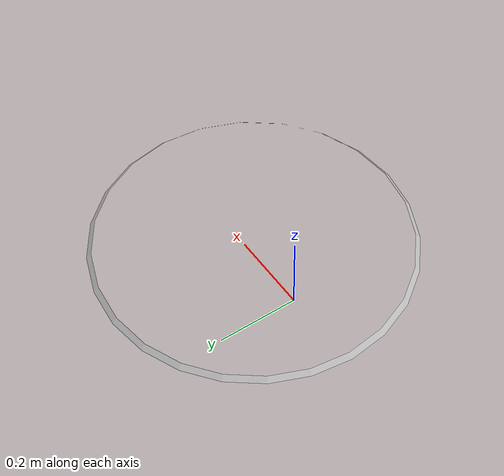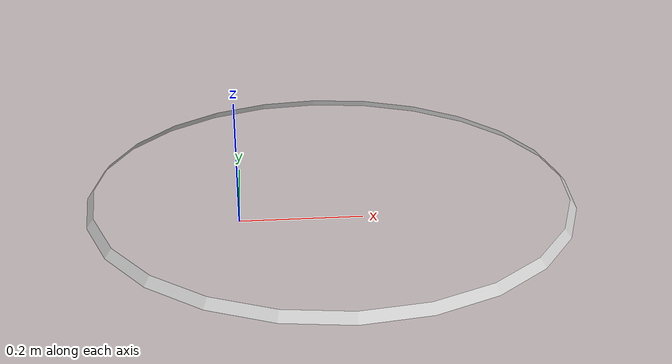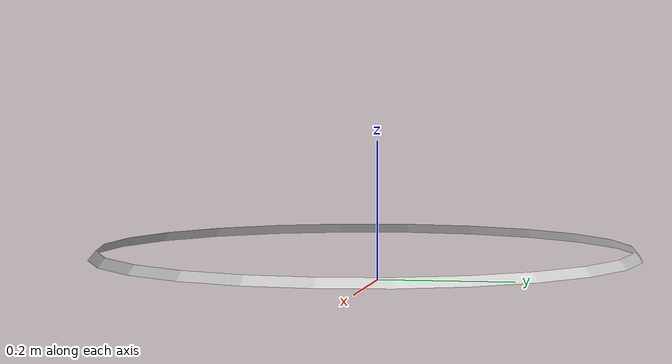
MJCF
<mujoco model="original-47">
  <default>
    <default class="visual">
      <geom group="2" type="mesh" contype="0" conaffinity="0"/>
    </default>
    <default class="collision">
      <geom group="3" type="mesh"/>
    </default>
  </default>
  <asset>
    <material name="material_0_0" specular="0.06666666666666667" shininess="0.03" rgba="0.8 0.8 0.8 1"/>
    <mesh file="original-47.obj"/>
  </asset>
  <worldbody>
    <body name="original-47">
      <geom material="material_0_0" mesh="original-47" class="visual"/>
      <geom mesh="original-47" class="collision"/>
    </body>
  </worldbody>
</mujoco>
